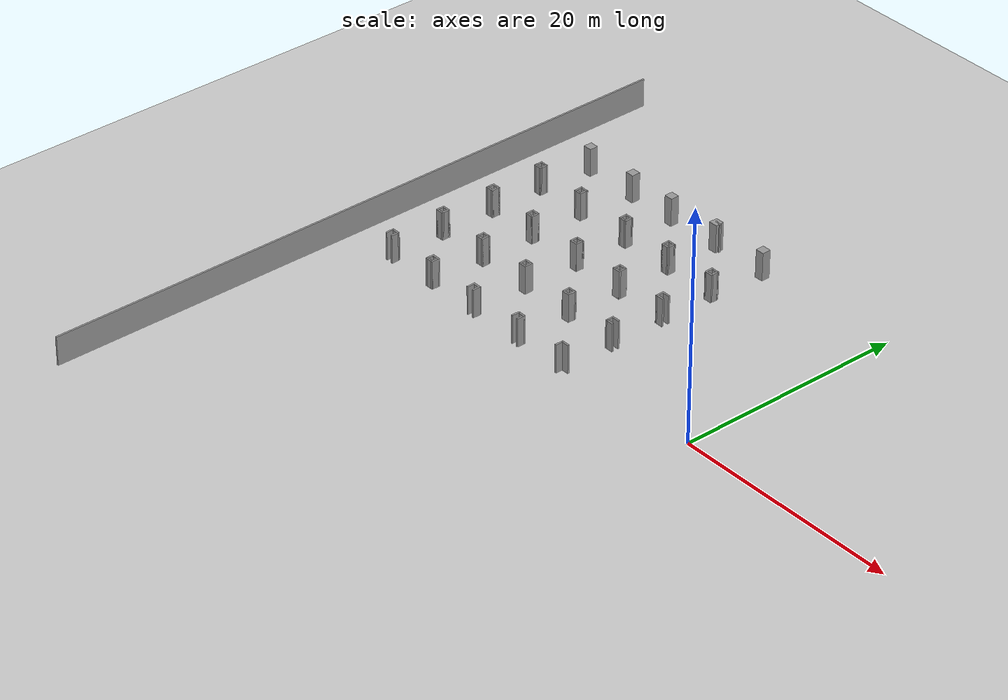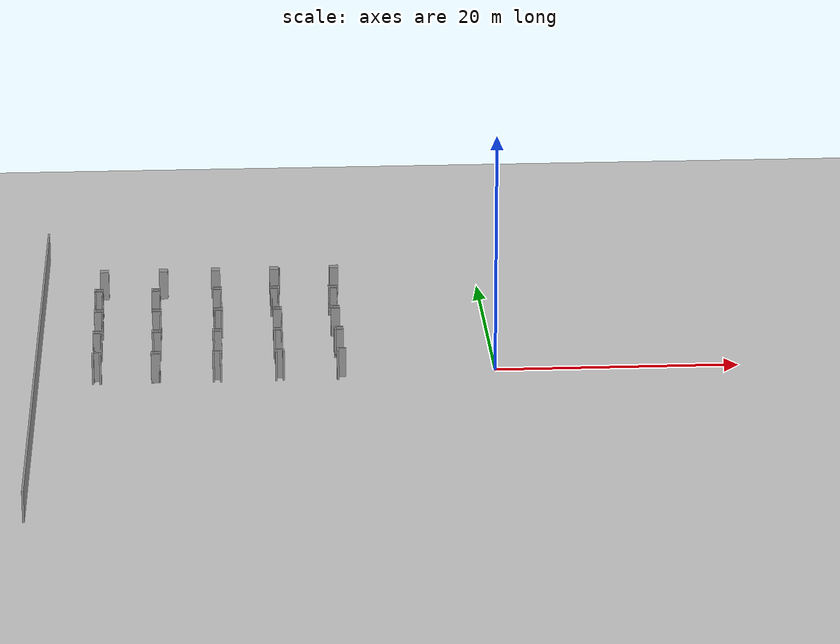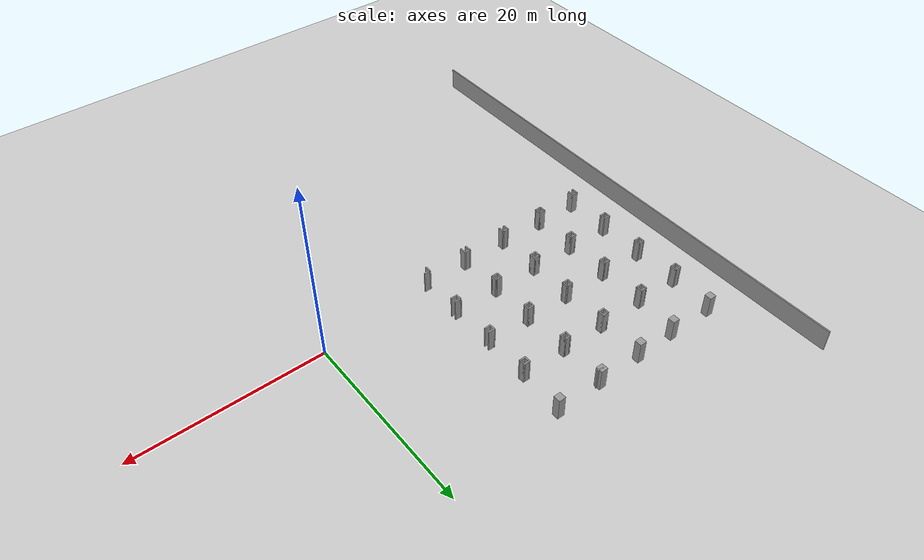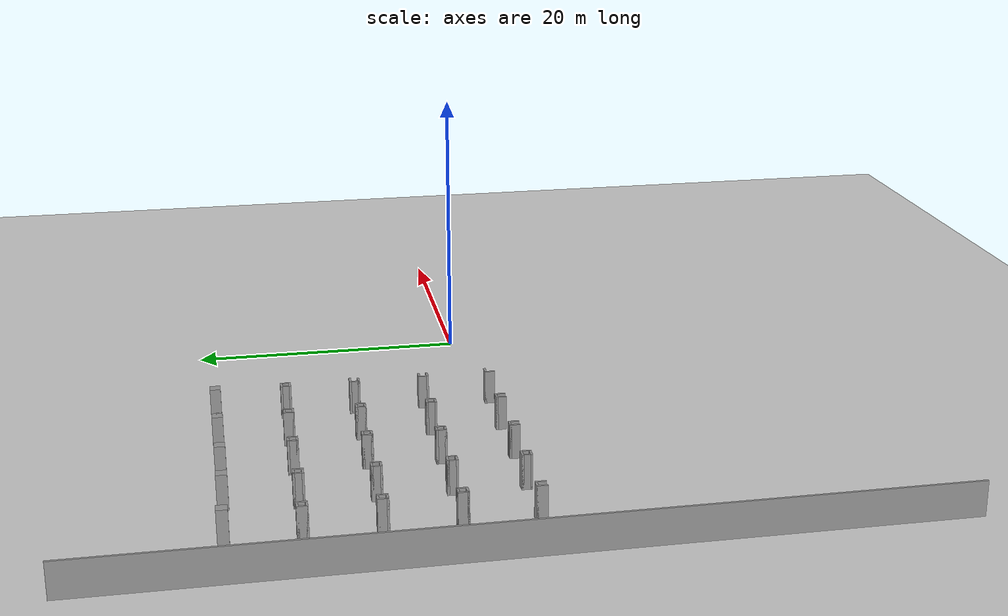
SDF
<sdf version="1.6">
 <world name="default">
  <model name="ground_plane">
   <static>1</static>
   <link name="link">
    <collision name="collision">
     <geometry><plane><normal>0 0 1</normal><size>100 100</size></plane></geometry>
     <surface>
      <contact><collide_bitmask>65535</collide_bitmask></contact>
      <friction><ode><mu>100</mu><mu2>50</mu2></ode></friction>
     </surface>
    </collision>
    <visual name="visual">
     <cast_shadows>0</cast_shadows>
     <geometry><plane><normal>0 0 1</normal><size>100 100</size></plane></geometry>
     <material>
      <script><uri>file://media/materials/scripts/gazebo.material</uri><name>Gazebo/Grey</name></script>
     </material>
    </visual>
   </link>
  </model>
  <model name="parking_area_big">
   <pose>0.030669 -0.012869 0 0 -0 0</pose>
   <link name="Wall_20">
    <collision name="Wall_20_Collision">
     <geometry><box><size>57.75 0.15 2.5</size></box></geometry>
     <pose>0 0 1.25 0 -0 0</pose>
    </collision>
    <visual name="Wall_20_Visual">
     <pose>0 0 1.25 0 -0 0</pose>
     <geometry><box><size>57.75 0.15 2.5</size></box></geometry>
     <material>
      <script><uri>file://media/materials/scripts/gazebo.material</uri><name>Gazebo/Grey</name></script>
      <ambient>1 1 1 1</ambient>
     </material>
     <meta><layer>0</layer></meta>
    </visual>
    <pose>-37.2686 0.011069 0 0 -0 1.5708</pose>
   </link>
   <link name="Wall_310">
    <collision name="Wall_310_Collision">
     <geometry><box><size>0.75 0.15 2.5</size></box></geometry>
     <pose>0 0 1.25 0 -0 0</pose>
    </collision>
    <visual name="Wall_310_Visual">
     <pose>0 0 1.25 0 -0 0</pose>
     <geometry><box><size>0.75 0.15 2.5</size></box></geometry>
     <material>
      <script><uri>file://media/materials/scripts/gazebo.material</uri><name>Gazebo/Grey</name></script>
      <ambient>1 1 1 1</ambient>
     </material>
     <meta><layer>0</layer></meta>
    </visual>
    <pose>-27.7407 14.2231 0 0 -0 0</pose>
   </link>
   <link name="Wall_311">
    <collision name="Wall_311_Collision">
     <geometry><box><size>0.75 0.15 2.5</size></box></geometry>
     <pose>0 0 1.25 0 -0 0</pose>
    </collision>
    <visual name="Wall_311_Visual">
     <pose>0 0 1.25 0 -0 0</pose>
     <geometry><box><size>0.75 0.15 2.5</size></box></geometry>
     <material>
      <script><uri>file://media/materials/scripts/gazebo.material</uri><name>Gazebo/Grey</name></script>
      <ambient>1 1 1 1</ambient>
     </material>
     <meta><layer>0</layer></meta>
    </visual>
    <pose>-27.4407 13.9231 0 0 -0 -1.5708</pose>
   </link>
   <link name="Wall_312">
    <collision name="Wall_312_Collision">
     <geometry><box><size>0.75 0.15 2.5</size></box></geometry>
     <pose>0 0 1.25 0 -0 0</pose>
    </collision>
    <visual name="Wall_312_Visual">
     <pose>0 0 1.25 0 -0 0</pose>
     <geometry><box><size>0.75 0.15 2.5</size></box></geometry>
     <material>
      <script><uri>file://media/materials/scripts/gazebo.material</uri><name>Gazebo/Grey</name></script>
      <ambient>1 1 1 1</ambient>
     </material>
     <meta><layer>0</layer></meta>
    </visual>
    <pose>-27.7407 13.6231 0 0 -0 3.14159</pose>
   </link>
   <link name="Wall_313">
    <collision name="Wall_313_Collision">
     <geometry><box><size>0.75 0.15 2.5</size></box></geometry>
     <pose>0 0 1.25 0 -0 0</pose>
    </collision>
    <visual name="Wall_313_Visual">
     <pose>0 0 1.25 0 -0 0</pose>
     <geometry><box><size>0.75 0.15 2.5</size></box></geometry>
     <material>
      <script><uri>file://media/materials/scripts/gazebo.material</uri><name>Gazebo/Grey</name></script>
      <ambient>1 1 1 1</ambient>
     </material>
     <meta><layer>0</layer></meta>
    </visual>
    <pose>-28.0407 13.9231 0 0 -0 1.5708</pose>
   </link>
   <link name="Wall_315">
    <collision name="Wall_315_Collision">
     <geometry><box><size>0.75 0.15 2.5</size></box></geometry>
     <pose>0 0 1.25 0 -0 0</pose>
    </collision>
    <visual name="Wall_315_Visual">
     <pose>0 0 1.25 0 -0 0</pose>
     <geometry><box><size>0.75 0.15 2.5</size></box></geometry>
     <material>
      <script><uri>file://media/materials/scripts/gazebo.material</uri><name>Gazebo/Grey</name></script>
      <ambient>1 1 1 1</ambient>
     </material>
     <meta><layer>0</layer></meta>
    </visual>
    <pose>-22.5565 14.276 0 0 -0 0</pose>
   </link>
   <link name="Wall_316">
    <collision name="Wall_316_Collision">
     <geometry><box><size>0.75 0.15 2.5</size></box></geometry>
     <pose>0 0 1.25 0 -0 0</pose>
    </collision>
    <visual name="Wall_316_Visual">
     <pose>0 0 1.25 0 -0 0</pose>
     <geometry><box><size>0.75 0.15 2.5</size></box></geometry>
     <material>
      <script><uri>file://media/materials/scripts/gazebo.material</uri><name>Gazebo/Grey</name></script>
      <ambient>1 1 1 1</ambient>
     </material>
     <meta><layer>0</layer></meta>
    </visual>
    <pose>-22.2565 13.976 0 0 -0 -1.5708</pose>
   </link>
   <link name="Wall_317">
    <collision name="Wall_317_Collision">
     <geometry><box><size>0.75 0.15 2.5</size></box></geometry>
     <pose>0 0 1.25 0 -0 0</pose>
    </collision>
    <visual name="Wall_317_Visual">
     <pose>0 0 1.25 0 -0 0</pose>
     <geometry><box><size>0.75 0.15 2.5</size></box></geometry>
     <material>
      <script><uri>file://media/materials/scripts/gazebo.material</uri><name>Gazebo/Grey</name></script>
      <ambient>1 1 1 1</ambient>
     </material>
     <meta><layer>0</layer></meta>
    </visual>
    <pose>-22.5565 13.676 0 0 -0 3.14159</pose>
   </link>
   <link name="Wall_319">
    <collision name="Wall_319_Collision">
     <geometry><box><size>0.75 0.15 2.5</size></box></geometry>
     <pose>0 0 1.25 0 -0 0</pose>
    </collision>
    <visual name="Wall_319_Visual">
     <pose>0 0 1.25 0 -0 0</pose>
     <geometry><box><size>0.75 0.15 2.5</size></box></geometry>
     <material>
      <script><uri>file://media/materials/scripts/gazebo.material</uri><name>Gazebo/Grey</name></script>
      <ambient>1 1 1 1</ambient>
     </material>
     <meta><layer>0</layer></meta>
    </visual>
    <pose>-22.8565 13.976 0 0 -0 -1.5708</pose>
   </link>
   <link name="Wall_323">
    <collision name="Wall_323_Collision">
     <geometry><box><size>0.75 0.15 2.5</size></box></geometry>
     <pose>0 0 1.25 0 -0 0</pose>
    </collision>
    <visual name="Wall_323_Visual">
     <pose>0 0 1.25 0 -0 0</pose>
     <geometry><box><size>0.75 0.15 2.5</size></box></geometry>
     <material>
      <script><uri>file://media/materials/scripts/gazebo.material</uri><name>Gazebo/Grey</name></script>
      <ambient>1 1 1 1</ambient>
     </material>
     <meta><layer>0</layer></meta>
    </visual>
    <pose>-17.6897 14.276 0 0 -0 0</pose>
   </link>
   <link name="Wall_324">
    <collision name="Wall_324_Collision">
     <geometry><box><size>0.75 0.15 2.5</size></box></geometry>
     <pose>0 0 1.25 0 -0 0</pose>
    </collision>
    <visual name="Wall_324_Visual">
     <pose>0 0 1.25 0 -0 0</pose>
     <geometry><box><size>0.75 0.15 2.5</size></box></geometry>
     <material>
      <script><uri>file://media/materials/scripts/gazebo.material</uri><name>Gazebo/Grey</name></script>
      <ambient>1 1 1 1</ambient>
     </material>
     <meta><layer>0</layer></meta>
    </visual>
    <pose>-17.3897 13.976 0 0 -0 -1.5708</pose>
   </link>
   <link name="Wall_325">
    <collision name="Wall_325_Collision">
     <geometry><box><size>0.75 0.15 2.5</size></box></geometry>
     <pose>0 0 1.25 0 -0 0</pose>
    </collision>
    <visual name="Wall_325_Visual">
     <pose>0 0 1.25 0 -0 0</pose>
     <geometry><box><size>0.75 0.15 2.5</size></box></geometry>
     <material>
      <script><uri>file://media/materials/scripts/gazebo.material</uri><name>Gazebo/Grey</name></script>
      <ambient>1 1 1 1</ambient>
     </material>
     <meta><layer>0</layer></meta>
    </visual>
    <pose>-17.6897 13.676 0 0 -0 3.14159</pose>
   </link>
   <link name="Wall_326">
    <collision name="Wall_326_Collision">
     <geometry><box><size>0.75 0.15 2.5</size></box></geometry>
     <pose>0 0 1.25 0 -0 0</pose>
    </collision>
    <visual name="Wall_326_Visual">
     <pose>0 0 1.25 0 -0 0</pose>
     <geometry><box><size>0.75 0.15 2.5</size></box></geometry>
     <material>
      <script><uri>file://media/materials/scripts/gazebo.material</uri><name>Gazebo/Grey</name></script>
      <ambient>1 1 1 1</ambient>
     </material>
     <meta><layer>0</layer></meta>
    </visual>
    <pose>-17.9897 13.976 0 0 -0 1.5708</pose>
   </link>
   <link name="Wall_328">
    <collision name="Wall_328_Collision">
     <geometry><box><size>0.75 0.15 2.5</size></box></geometry>
     <pose>0 0 1.25 0 -0 0</pose>
    </collision>
    <visual name="Wall_328_Visual">
     <pose>0 0 1.25 0 -0 0</pose>
     <geometry><box><size>0.75 0.15 2.5</size></box></geometry>
     <material>
      <script><uri>file://media/materials/scripts/gazebo.material</uri><name>Gazebo/Grey</name></script>
      <ambient>1 1 1 1</ambient>
     </material>
     <meta><layer>0</layer></meta>
    </visual>
    <pose>-12.77 14.2231 0 0 -0 0</pose>
   </link>
   <link name="Wall_329">
    <collision name="Wall_329_Collision">
     <geometry><box><size>0.75 0.15 2.5</size></box></geometry>
     <pose>0 0 1.25 0 -0 0</pose>
    </collision>
    <visual name="Wall_329_Visual">
     <pose>0 0 1.25 0 -0 0</pose>
     <geometry><box><size>0.75 0.15 2.5</size></box></geometry>
     <material>
      <script><uri>file://media/materials/scripts/gazebo.material</uri><name>Gazebo/Grey</name></script>
      <ambient>1 1 1 1</ambient>
     </material>
     <meta><layer>0</layer></meta>
    </visual>
    <pose>-12.47 13.9231 0 0 -0 -1.5708</pose>
   </link>
   <link name="Wall_330">
    <collision name="Wall_330_Collision">
     <geometry><box><size>0.75 0.15 2.5</size></box></geometry>
     <pose>0 0 1.25 0 -0 0</pose>
    </collision>
    <visual name="Wall_330_Visual">
     <pose>0 0 1.25 0 -0 0</pose>
     <geometry><box><size>0.75 0.15 2.5</size></box></geometry>
     <material>
      <script><uri>file://media/materials/scripts/gazebo.material</uri><name>Gazebo/Grey</name></script>
      <ambient>1 1 1 1</ambient>
     </material>
     <meta><layer>0</layer></meta>
    </visual>
    <pose>-12.77 13.6231 0 0 -0 3.14159</pose>
   </link>
   <link name="Wall_331">
    <collision name="Wall_331_Collision">
     <geometry><box><size>0.75 0.15 2.5</size></box></geometry>
     <pose>0 0 1.25 0 -0 0</pose>
    </collision>
    <visual name="Wall_331_Visual">
     <pose>0 0 1.25 0 -0 0</pose>
     <geometry><box><size>0.75 0.15 2.5</size></box></geometry>
     <material>
      <script><uri>file://media/materials/scripts/gazebo.material</uri><name>Gazebo/Grey</name></script>
      <ambient>1 1 1 1</ambient>
     </material>
     <meta><layer>0</layer></meta>
    </visual>
    <pose>-13.07 13.9231 0 0 -0 1.5708</pose>
   </link>
   <link name="Wall_343">
    <collision name="Wall_343_Collision">
     <geometry><box><size>0.75 0.15 2.5</size></box></geometry>
     <pose>0 0 1.25 0 -0 0</pose>
    </collision>
    <visual name="Wall_343_Visual">
     <pose>0 0 1.25 0 -0 0</pose>
     <geometry><box><size>0.75 0.15 2.5</size></box></geometry>
     <material>
      <script><uri>file://media/materials/scripts/gazebo.material</uri><name>Gazebo/Grey</name></script>
      <ambient>1 1 1 1</ambient>
     </material>
     <meta><layer>0</layer></meta>
    </visual>
    <pose>-12.7435 9.2505 0 0 -0 0</pose>
   </link>
   <link name="Wall_345">
    <collision name="Wall_345_Collision">
     <geometry><box><size>0.75 0.15 2.5</size></box></geometry>
     <pose>0 0 1.25 0 -0 0</pose>
    </collision>
    <visual name="Wall_345_Visual">
     <pose>0 0 1.25 0 -0 0</pose>
     <geometry><box><size>0.75 0.15 2.5</size></box></geometry>
     <material>
      <script><uri>file://media/materials/scripts/gazebo.material</uri><name>Gazebo/Grey</name></script>
      <ambient>1 1 1 1</ambient>
     </material>
     <meta><layer>0</layer></meta>
    </visual>
    <pose>-12.7435 8.6505 0 0 -0 3.14159</pose>
   </link>
   <link name="Wall_346">
    <collision name="Wall_346_Collision">
     <geometry><box><size>0.75 0.15 2.5</size></box></geometry>
     <pose>0 0 1.25 0 -0 0</pose>
    </collision>
    <visual name="Wall_346_Visual">
     <pose>0 0 1.25 0 -0 0</pose>
     <geometry><box><size>0.75 0.15 2.5</size></box></geometry>
     <material>
      <script><uri>file://media/materials/scripts/gazebo.material</uri><name>Gazebo/Grey</name></script>
      <ambient>1 1 1 1</ambient>
     </material>
     <meta><layer>0</layer></meta>
    </visual>
    <pose>-13.0435 8.9505 0 0 -0 1.5708</pose>
   </link>
   <link name="Wall_348">
    <collision name="Wall_348_Collision">
     <geometry><box><size>0.75 0.15 2.5</size></box></geometry>
     <pose>0 0 1.25 0 -0 0</pose>
    </collision>
    <visual name="Wall_348_Visual">
     <pose>0 0 1.25 0 -0 0</pose>
     <geometry><box><size>0.75 0.15 2.5</size></box></geometry>
     <material>
      <script><uri>file://media/materials/scripts/gazebo.material</uri><name>Gazebo/Grey</name></script>
      <ambient>1 1 1 1</ambient>
     </material>
     <meta><layer>0</layer></meta>
    </visual>
    <pose>-17.5839 9.2505 0 0 -0 0</pose>
   </link>
   <link name="Wall_349">
    <collision name="Wall_349_Collision">
     <geometry><box><size>0.75 0.15 2.5</size></box></geometry>
     <pose>0 0 1.25 0 -0 0</pose>
    </collision>
    <visual name="Wall_349_Visual">
     <pose>0 0 1.25 0 -0 0</pose>
     <geometry><box><size>0.75 0.15 2.5</size></box></geometry>
     <material>
      <script><uri>file://media/materials/scripts/gazebo.material</uri><name>Gazebo/Grey</name></script>
      <ambient>1 1 1 1</ambient>
     </material>
     <meta><layer>0</layer></meta>
    </visual>
    <pose>-17.2839 8.9505 0 0 -0 -1.5708</pose>
   </link>
   <link name="Wall_350">
    <collision name="Wall_350_Collision">
     <geometry><box><size>0.75 0.15 2.5</size></box></geometry>
     <pose>0 0 1.25 0 -0 0</pose>
    </collision>
    <visual name="Wall_350_Visual">
     <pose>0 0 1.25 0 -0 0</pose>
     <geometry><box><size>0.75 0.15 2.5</size></box></geometry>
     <material>
      <script><uri>file://media/materials/scripts/gazebo.material</uri><name>Gazebo/Grey</name></script>
      <ambient>1 1 1 1</ambient>
     </material>
     <meta><layer>0</layer></meta>
    </visual>
    <pose>-17.5839 8.6505 0 0 -0 3.14159</pose>
   </link>
   <link name="Wall_351">
    <collision name="Wall_351_Collision">
     <geometry><box><size>0.75 0.15 2.5</size></box></geometry>
     <pose>0 0 1.25 0 -0 0</pose>
    </collision>
    <visual name="Wall_351_Visual">
     <pose>0 0 1.25 0 -0 0</pose>
     <geometry><box><size>0.75 0.15 2.5</size></box></geometry>
     <material>
      <script><uri>file://media/materials/scripts/gazebo.material</uri><name>Gazebo/Grey</name></script>
      <ambient>1 1 1 1</ambient>
     </material>
     <meta><layer>0</layer></meta>
    </visual>
    <pose>-17.8839 8.9505 0 0 -0 1.5708</pose>
   </link>
   <link name="Wall_353">
    <collision name="Wall_353_Collision">
     <geometry><box><size>0.75 0.15 2.5</size></box></geometry>
     <pose>0 0 1.25 0 -0 0</pose>
    </collision>
    <visual name="Wall_353_Visual">
     <pose>0 0 1.25 0 -0 0</pose>
     <geometry><box><size>0.75 0.15 2.5</size></box></geometry>
     <material>
      <script><uri>file://media/materials/scripts/gazebo.material</uri><name>Gazebo/Grey</name></script>
      <ambient>1 1 1 1</ambient>
     </material>
     <meta><layer>0</layer></meta>
    </visual>
    <pose>-22.53 9.27695 0 0 -0 0</pose>
   </link>
   <link name="Wall_354">
    <collision name="Wall_354_Collision">
     <geometry><box><size>0.75 0.15 2.5</size></box></geometry>
     <pose>0 0 1.25 0 -0 0</pose>
    </collision>
    <visual name="Wall_354_Visual">
     <pose>0 0 1.25 0 -0 0</pose>
     <geometry><box><size>0.75 0.15 2.5</size></box></geometry>
     <material>
      <script><uri>file://media/materials/scripts/gazebo.material</uri><name>Gazebo/Grey</name></script>
      <ambient>1 1 1 1</ambient>
     </material>
     <meta><layer>0</layer></meta>
    </visual>
    <pose>-22.23 8.97695 0 0 -0 -1.5708</pose>
   </link>
   <link name="Wall_355">
    <collision name="Wall_355_Collision">
     <geometry><box><size>0.75 0.15 2.5</size></box></geometry>
     <pose>0 0 1.25 0 -0 0</pose>
    </collision>
    <visual name="Wall_355_Visual">
     <pose>0 0 1.25 0 -0 0</pose>
     <geometry><box><size>0.75 0.15 2.5</size></box></geometry>
     <material>
      <script><uri>file://media/materials/scripts/gazebo.material</uri><name>Gazebo/Grey</name></script>
      <ambient>1 1 1 1</ambient>
     </material>
     <meta><layer>0</layer></meta>
    </visual>
    <pose>-22.53 8.67695 0 0 -0 3.14159</pose>
   </link>
   <link name="Wall_356">
    <collision name="Wall_356_Collision">
     <geometry><box><size>0.75 0.15 2.5</size></box></geometry>
     <pose>0 0 1.25 0 -0 0</pose>
    </collision>
    <visual name="Wall_356_Visual">
     <pose>0 0 1.25 0 -0 0</pose>
     <geometry><box><size>0.75 0.15 2.5</size></box></geometry>
     <material>
      <script><uri>file://media/materials/scripts/gazebo.material</uri><name>Gazebo/Grey</name></script>
      <ambient>1 1 1 1</ambient>
     </material>
     <meta><layer>0</layer></meta>
    </visual>
    <pose>-22.83 8.97695 0 0 -0 1.5708</pose>
   </link>
   <link name="Wall_358">
    <collision name="Wall_358_Collision">
     <geometry><box><size>0.75 0.15 2.5</size></box></geometry>
     <pose>0 0 1.25 0 -0 0</pose>
    </collision>
    <visual name="Wall_358_Visual">
     <pose>0 0 1.25 0 -0 0</pose>
     <geometry><box><size>0.75 0.15 2.5</size></box></geometry>
     <material>
      <script><uri>file://media/materials/scripts/gazebo.material</uri><name>Gazebo/Grey</name></script>
      <ambient>1 1 1 1</ambient>
     </material>
     <meta><layer>0</layer></meta>
    </visual>
    <pose>-27.6349 9.1976 0 0 -0 0</pose>
   </link>
   <link name="Wall_359">
    <collision name="Wall_359_Collision">
     <geometry><box><size>0.75 0.15 2.5</size></box></geometry>
     <pose>0 0 1.25 0 -0 0</pose>
    </collision>
    <visual name="Wall_359_Visual">
     <pose>0 0 1.25 0 -0 0</pose>
     <geometry><box><size>0.75 0.15 2.5</size></box></geometry>
     <material>
      <script><uri>file://media/materials/scripts/gazebo.material</uri><name>Gazebo/Grey</name></script>
      <ambient>1 1 1 1</ambient>
     </material>
     <meta><layer>0</layer></meta>
    </visual>
    <pose>-27.3349 8.8976 0 0 -0 -1.5708</pose>
   </link>
   <link name="Wall_360">
    <collision name="Wall_360_Collision">
     <geometry><box><size>0.75 0.15 2.5</size></box></geometry>
     <pose>0 0 1.25 0 -0 0</pose>
    </collision>
    <visual name="Wall_360_Visual">
     <pose>0 0 1.25 0 -0 0</pose>
     <geometry><box><size>0.75 0.15 2.5</size></box></geometry>
     <material>
      <script><uri>file://media/materials/scripts/gazebo.material</uri><name>Gazebo/Grey</name></script>
      <ambient>1 1 1 1</ambient>
     </material>
     <meta><layer>0</layer></meta>
    </visual>
    <pose>-27.6349 8.5976 0 0 -0 3.14159</pose>
   </link>
   <link name="Wall_361">
    <collision name="Wall_361_Collision">
     <geometry><box><size>0.75 0.15 2.5</size></box></geometry>
     <pose>0 0 1.25 0 -0 0</pose>
    </collision>
    <visual name="Wall_361_Visual">
     <pose>0 0 1.25 0 -0 0</pose>
     <geometry><box><size>0.75 0.15 2.5</size></box></geometry>
     <material>
      <script><uri>file://media/materials/scripts/gazebo.material</uri><name>Gazebo/Grey</name></script>
      <ambient>1 1 1 1</ambient>
     </material>
     <meta><layer>0</layer></meta>
    </visual>
    <pose>-27.9349 8.8976 0 0 -0 1.5708</pose>
   </link>
   <link name="Wall_363">
    <collision name="Wall_363_Collision">
     <geometry><box><size>0.75 0.15 2.5</size></box></geometry>
     <pose>0 0 1.25 0 -0 0</pose>
    </collision>
    <visual name="Wall_363_Visual">
     <pose>0 0 1.25 0 -0 0</pose>
     <geometry><box><size>0.75 0.15 2.5</size></box></geometry>
     <material>
      <script><uri>file://media/materials/scripts/gazebo.material</uri><name>Gazebo/Grey</name></script>
      <ambient>1 1 1 1</ambient>
     </material>
     <meta><layer>0</layer></meta>
    </visual>
    <pose>-27.6349 4.25145 0 0 -0 0</pose>
   </link>
   <link name="Wall_364">
    <collision name="Wall_364_Collision">
     <geometry><box><size>0.75 0.15 2.5</size></box></geometry>
     <pose>0 0 1.25 0 -0 0</pose>
    </collision>
    <visual name="Wall_364_Visual">
     <pose>0 0 1.25 0 -0 0</pose>
     <geometry><box><size>0.75 0.15 2.5</size></box></geometry>
     <material>
      <script><uri>file://media/materials/scripts/gazebo.material</uri><name>Gazebo/Grey</name></script>
      <ambient>1 1 1 1</ambient>
     </material>
     <meta><layer>0</layer></meta>
    </visual>
    <pose>-27.3349 3.95145 0 0 -0 -1.5708</pose>
   </link>
   <link name="Wall_365">
    <collision name="Wall_365_Collision">
     <geometry><box><size>0.75 0.15 2.5</size></box></geometry>
     <pose>0 0 1.25 0 -0 0</pose>
    </collision>
    <visual name="Wall_365_Visual">
     <pose>0 0 1.25 0 -0 0</pose>
     <geometry><box><size>0.75 0.15 2.5</size></box></geometry>
     <material>
      <script><uri>file://media/materials/scripts/gazebo.material</uri><name>Gazebo/Grey</name></script>
      <ambient>1 1 1 1</ambient>
     </material>
     <meta><layer>0</layer></meta>
    </visual>
    <pose>-27.6349 3.65145 0 0 -0 3.14159</pose>
   </link>
   <link name="Wall_366">
    <collision name="Wall_366_Collision">
     <geometry><box><size>0.75 0.15 2.5</size></box></geometry>
     <pose>0 0 1.25 0 -0 0</pose>
    </collision>
    <visual name="Wall_366_Visual">
     <pose>0 0 1.25 0 -0 0</pose>
     <geometry><box><size>0.75 0.15 2.5</size></box></geometry>
     <material>
      <script><uri>file://media/materials/scripts/gazebo.material</uri><name>Gazebo/Grey</name></script>
      <ambient>1 1 1 1</ambient>
     </material>
     <meta><layer>0</layer></meta>
    </visual>
    <pose>-27.9349 3.95145 0 0 -0 1.5708</pose>
   </link>
   <link name="Wall_368">
    <collision name="Wall_368_Collision">
     <geometry><box><size>0.75 0.15 2.5</size></box></geometry>
     <pose>0 0 1.25 0 -0 0</pose>
    </collision>
    <visual name="Wall_368_Visual">
     <pose>0 0 1.25 0 -0 0</pose>
     <geometry><box><size>0.75 0.15 2.5</size></box></geometry>
     <material>
      <script><uri>file://media/materials/scripts/gazebo.material</uri><name>Gazebo/Grey</name></script>
      <ambient>1 1 1 1</ambient>
     </material>
     <meta><layer>0</layer></meta>
    </visual>
    <pose>-22.6623 4.2779 0 0 -0 0</pose>
   </link>
   <link name="Wall_369">
    <collision name="Wall_369_Collision">
     <geometry><box><size>0.75 0.15 2.5</size></box></geometry>
     <pose>0 0 1.25 0 -0 0</pose>
    </collision>
    <visual name="Wall_369_Visual">
     <pose>0 0 1.25 0 -0 0</pose>
     <geometry><box><size>0.75 0.15 2.5</size></box></geometry>
     <material>
      <script><uri>file://media/materials/scripts/gazebo.material</uri><name>Gazebo/Grey</name></script>
      <ambient>1 1 1 1</ambient>
     </material>
     <meta><layer>0</layer></meta>
    </visual>
    <pose>-22.3623 3.9779 0 0 -0 -1.5708</pose>
   </link>
   <link name="Wall_370">
    <collision name="Wall_370_Collision">
     <geometry><box><size>0.75 0.15 2.5</size></box></geometry>
     <pose>0 0 1.25 0 -0 0</pose>
    </collision>
    <visual name="Wall_370_Visual">
     <pose>0 0 1.25 0 -0 0</pose>
     <geometry><box><size>0.75 0.15 2.5</size></box></geometry>
     <material>
      <script><uri>file://media/materials/scripts/gazebo.material</uri><name>Gazebo/Grey</name></script>
      <ambient>1 1 1 1</ambient>
     </material>
     <meta><layer>0</layer></meta>
    </visual>
    <pose>-22.6623 3.6779 0 0 -0 3.14159</pose>
   </link>
   <link name="Wall_371">
    <collision name="Wall_371_Collision">
     <geometry><box><size>0.75 0.15 2.5</size></box></geometry>
     <pose>0 0 1.25 0 -0 0</pose>
    </collision>
    <visual name="Wall_371_Visual">
     <pose>0 0 1.25 0 -0 0</pose>
     <geometry><box><size>0.75 0.15 2.5</size></box></geometry>
     <material>
      <script><uri>file://media/materials/scripts/gazebo.material</uri><name>Gazebo/Grey</name></script>
      <ambient>1 1 1 1</ambient>
     </material>
     <meta><layer>0</layer></meta>
    </visual>
    <pose>-22.9623 3.9779 0 0 -0 1.5708</pose>
   </link>
   <link name="Wall_376">
    <collision name="Wall_376_Collision">
     <geometry><box><size>0.75 0.15 2.5</size></box></geometry>
     <pose>0 0 1.25 0 -0 0</pose>
    </collision>
    <visual name="Wall_376_Visual">
     <pose>0 0 1.25 0 -0 0</pose>
     <geometry><box><size>0.75 0.15 2.5</size></box></geometry>
     <material>
      <script><uri>file://media/materials/scripts/gazebo.material</uri><name>Gazebo/Grey</name></script>
      <ambient>1 1 1 1</ambient>
     </material>
     <meta><layer>0</layer></meta>
    </visual>
    <pose>-17.6632 4.2779 0 0 -0 0</pose>
   </link>
   <link name="Wall_377">
    <collision name="Wall_377_Collision">
     <geometry><box><size>0.75 0.15 2.5</size></box></geometry>
     <pose>0 0 1.25 0 -0 0</pose>
    </collision>
    <visual name="Wall_377_Visual">
     <pose>0 0 1.25 0 -0 0</pose>
     <geometry><box><size>0.75 0.15 2.5</size></box></geometry>
     <material>
      <script><uri>file://media/materials/scripts/gazebo.material</uri><name>Gazebo/Grey</name></script>
      <ambient>1 1 1 1</ambient>
     </material>
     <meta><layer>0</layer></meta>
    </visual>
    <pose>-17.3632 3.9779 0 0 -0 -1.5708</pose>
   </link>
   <link name="Wall_378">
    <collision name="Wall_378_Collision">
     <geometry><box><size>0.75 0.15 2.5</size></box></geometry>
     <pose>0 0 1.25 0 -0 0</pose>
    </collision>
    <visual name="Wall_378_Visual">
     <pose>0 0 1.25 0 -0 0</pose>
     <geometry><box><size>0.75 0.15 2.5</size></box></geometry>
     <material>
      <script><uri>file://media/materials/scripts/gazebo.material</uri><name>Gazebo/Grey</name></script>
      <ambient>1 1 1 1</ambient>
     </material>
     <meta><layer>0</layer></meta>
    </visual>
    <pose>-17.6632 3.6779 0 0 -0 3.14159</pose>
   </link>
   <link name="Wall_379">
    <collision name="Wall_379_Collision">
     <geometry><box><size>0.75 0.15 2.5</size></box></geometry>
     <pose>0 0 1.25 0 -0 0</pose>
    </collision>
    <visual name="Wall_379_Visual">
     <pose>0 0 1.25 0 -0 0</pose>
     <geometry><box><size>0.75 0.15 2.5</size></box></geometry>
     <material>
      <script><uri>file://media/materials/scripts/gazebo.material</uri><name>Gazebo/Grey</name></script>
      <ambient>1 1 1 1</ambient>
     </material>
     <meta><layer>0</layer></meta>
    </visual>
    <pose>-17.9632 3.9779 0 0 -0 1.5708</pose>
   </link>
   <link name="Wall_381">
    <collision name="Wall_381_Collision">
     <geometry><box><size>0.75 0.15 2.5</size></box></geometry>
     <pose>0 0 1.25 0 -0 0</pose>
    </collision>
    <visual name="Wall_381_Visual">
     <pose>0 0 1.25 0 -0 0</pose>
     <geometry><box><size>0.75 0.15 2.5</size></box></geometry>
     <material>
      <script><uri>file://media/materials/scripts/gazebo.material</uri><name>Gazebo/Grey</name></script>
      <ambient>1 1 1 1</ambient>
     </material>
     <meta><layer>0</layer></meta>
    </visual>
    <pose>-12.6642 4.19855 0 0 -0 0</pose>
   </link>
   <link name="Wall_383">
    <collision name="Wall_383_Collision">
     <geometry><box><size>0.75 0.15 2.5</size></box></geometry>
     <pose>0 0 1.25 0 -0 0</pose>
    </collision>
    <visual name="Wall_383_Visual">
     <pose>0 0 1.25 0 -0 0</pose>
     <geometry><box><size>0.75 0.15 2.5</size></box></geometry>
     <material>
      <script><uri>file://media/materials/scripts/gazebo.material</uri><name>Gazebo/Grey</name></script>
      <ambient>1 1 1 1</ambient>
     </material>
     <meta><layer>0</layer></meta>
    </visual>
    <pose>-12.6642 3.59855 0 0 -0 3.14159</pose>
   </link>
   <link name="Wall_384">
    <collision name="Wall_384_Collision">
     <geometry><box><size>0.75 0.15 2.5</size></box></geometry>
     <pose>0 0 1.25 0 -0 0</pose>
    </collision>
    <visual name="Wall_384_Visual">
     <pose>0 0 1.25 0 -0 0</pose>
     <geometry><box><size>0.75 0.15 2.5</size></box></geometry>
     <material>
      <script><uri>file://media/materials/scripts/gazebo.material</uri><name>Gazebo/Grey</name></script>
      <ambient>1 1 1 1</ambient>
     </material>
     <meta><layer>0</layer></meta>
    </visual>
    <pose>-12.9642 3.89855 0 0 -0 1.5708</pose>
   </link>
   <link name="Wall_391">
    <collision name="Wall_391_Collision">
     <geometry><box><size>0.75 0.15 2.5</size></box></geometry>
     <pose>0 0 1.25 0 -0 0</pose>
    </collision>
    <visual name="Wall_391_Visual">
     <pose>0 0 1.25 0 -0 0</pose>
     <geometry><box><size>0.75 0.15 2.5</size></box></geometry>
     <material>
      <script><uri>file://media/materials/scripts/gazebo.material</uri><name>Gazebo/Grey</name></script>
      <ambient>1 1 1 1</ambient>
     </material>
     <meta><layer>0</layer></meta>
    </visual>
    <pose>-27.6878 -0.668253 0 0 -0 0</pose>
   </link>
   <link name="Wall_392">
    <collision name="Wall_392_Collision">
     <geometry><box><size>0.75 0.15 2.5</size></box></geometry>
     <pose>0 0 1.25 0 -0 0</pose>
    </collision>
    <visual name="Wall_392_Visual">
     <pose>0 0 1.25 0 -0 0</pose>
     <geometry><box><size>0.75 0.15 2.5</size></box></geometry>
     <material>
      <script><uri>file://media/materials/scripts/gazebo.material</uri><name>Gazebo/Grey</name></script>
      <ambient>1 1 1 1</ambient>
     </material>
     <meta><layer>0</layer></meta>
    </visual>
    <pose>-27.3878 -0.968253 0 0 -0 -1.5708</pose>
   </link>
   <link name="Wall_393">
    <collision name="Wall_393_Collision">
     <geometry><box><size>0.75 0.15 2.5</size></box></geometry>
     <pose>0 0 1.25 0 -0 0</pose>
    </collision>
    <visual name="Wall_393_Visual">
     <pose>0 0 1.25 0 -0 0</pose>
     <geometry><box><size>0.75 0.15 2.5</size></box></geometry>
     <material>
      <script><uri>file://media/materials/scripts/gazebo.material</uri><name>Gazebo/Grey</name></script>
      <ambient>1 1 1 1</ambient>
     </material>
     <meta><layer>0</layer></meta>
    </visual>
    <pose>-27.6878 -1.26825 0 0 -0 3.14159</pose>
   </link>
   <link name="Wall_394">
    <collision name="Wall_394_Collision">
     <geometry><box><size>0.75 0.15 2.5</size></box></geometry>
     <pose>0 0 1.25 0 -0 0</pose>
    </collision>
    <visual name="Wall_394_Visual">
     <pose>0 0 1.25 0 -0 0</pose>
     <geometry><box><size>0.75 0.15 2.5</size></box></geometry>
     <material>
      <script><uri>file://media/materials/scripts/gazebo.material</uri><name>Gazebo/Grey</name></script>
      <ambient>1 1 1 1</ambient>
     </material>
     <meta><layer>0</layer></meta>
    </visual>
    <pose>-27.9878 -0.968253 0 0 -0 1.5708</pose>
   </link>
   <link name="Wall_396">
    <collision name="Wall_396_Collision">
     <geometry><box><size>0.75 0.15 2.5</size></box></geometry>
     <pose>0 0 1.25 0 -0 0</pose>
    </collision>
    <visual name="Wall_396_Visual">
     <pose>0 0 1.25 0 -0 0</pose>
     <geometry><box><size>0.75 0.15 2.5</size></box></geometry>
     <material>
      <script><uri>file://media/materials/scripts/gazebo.material</uri><name>Gazebo/Grey</name></script>
      <ambient>1 1 1 1</ambient>
     </material>
     <meta><layer>0</layer></meta>
    </visual>
    <pose>-22.7152 -0.774053 0 0 -0 0</pose>
   </link>
   <link name="Wall_397">
    <collision name="Wall_397_Collision">
     <geometry><box><size>0.75 0.15 2.5</size></box></geometry>
     <pose>0 0 1.25 0 -0 0</pose>
    </collision>
    <visual name="Wall_397_Visual">
     <pose>0 0 1.25 0 -0 0</pose>
     <geometry><box><size>0.75 0.15 2.5</size></box></geometry>
     <material>
      <script><uri>file://media/materials/scripts/gazebo.material</uri><name>Gazebo/Grey</name></script>
      <ambient>1 1 1 1</ambient>
     </material>
     <meta><layer>0</layer></meta>
    </visual>
    <pose>-22.4152 -1.07405 0 0 -0 -1.5708</pose>
   </link>
   <link name="Wall_399">
    <collision name="Wall_399_Collision">
     <geometry><box><size>0.75 0.15 2.5</size></box></geometry>
     <pose>0 0 1.25 0 -0 0</pose>
    </collision>
    <visual name="Wall_399_Visual">
     <pose>0 0 1.25 0 -0 0</pose>
     <geometry><box><size>0.75 0.15 2.5</size></box></geometry>
     <material>
      <script><uri>file://media/materials/scripts/gazebo.material</uri><name>Gazebo/Grey</name></script>
      <ambient>1 1 1 1</ambient>
     </material>
     <meta><layer>0</layer></meta>
    </visual>
    <pose>-23.0152 -1.07405 0 0 -0 1.5708</pose>
   </link>
   <link name="Wall_401">
    <collision name="Wall_401_Collision">
     <geometry><box><size>0.75 0.15 2.5</size></box></geometry>
     <pose>0 0 1.25 0 -0 0</pose>
    </collision>
    <visual name="Wall_401_Visual">
     <pose>0 0 1.25 0 -0 0</pose>
     <geometry><box><size>0.75 0.15 2.5</size></box></geometry>
     <material>
      <script><uri>file://media/materials/scripts/gazebo.material</uri><name>Gazebo/Grey</name></script>
      <ambient>1 1 1 1</ambient>
     </material>
     <meta><layer>0</layer></meta>
    </visual>
    <pose>-17.6368 -0.721153 0 0 -0 0</pose>
   </link>
   <link name="Wall_402">
    <collision name="Wall_402_Collision">
     <geometry><box><size>0.75 0.15 2.5</size></box></geometry>
     <pose>0 0 1.25 0 -0 0</pose>
    </collision>
    <visual name="Wall_402_Visual">
     <pose>0 0 1.25 0 -0 0</pose>
     <geometry><box><size>0.75 0.15 2.5</size></box></geometry>
     <material>
      <script><uri>file://media/materials/scripts/gazebo.material</uri><name>Gazebo/Grey</name></script>
      <ambient>1 1 1 1</ambient>
     </material>
     <meta><layer>0</layer></meta>
    </visual>
    <pose>-17.3368 -1.02115 0 0 -0 -1.5708</pose>
   </link>
   <link name="Wall_404">
    <collision name="Wall_404_Collision">
     <geometry><box><size>0.75 0.15 2.5</size></box></geometry>
     <pose>0 0 1.25 0 -0 0</pose>
    </collision>
    <visual name="Wall_404_Visual">
     <pose>0 0 1.25 0 -0 0</pose>
     <geometry><box><size>0.75 0.15 2.5</size></box></geometry>
     <material>
      <script><uri>file://media/materials/scripts/gazebo.material</uri><name>Gazebo/Grey</name></script>
      <ambient>1 1 1 1</ambient>
     </material>
     <meta><layer>0</layer></meta>
    </visual>
    <pose>-17.9368 -1.02115 0 0 -0 1.5708</pose>
   </link>
   <link name="Wall_406">
    <collision name="Wall_406_Collision">
     <geometry><box><size>0.75 0.15 2.5</size></box></geometry>
     <pose>0 0 1.25 0 -0 0</pose>
    </collision>
    <visual name="Wall_406_Visual">
     <pose>0 0 1.25 0 -0 0</pose>
     <geometry><box><size>0.75 0.15 2.5</size></box></geometry>
     <material>
      <script><uri>file://media/materials/scripts/gazebo.material</uri><name>Gazebo/Grey</name></script>
      <ambient>1 1 1 1</ambient>
     </material>
     <meta><layer>0</layer></meta>
    </visual>
    <pose>-12.6377 -0.747603 0 0 -0 0</pose>
   </link>
   <link name="Wall_409">
    <collision name="Wall_409_Collision">
     <geometry><box><size>0.75 0.15 2.5</size></box></geometry>
     <pose>0 0 1.25 0 -0 0</pose>
    </collision>
    <visual name="Wall_409_Visual">
     <pose>0 0 1.25 0 -0 0</pose>
     <geometry><box><size>0.75 0.15 2.5</size></box></geometry>
     <material>
      <script><uri>file://media/materials/scripts/gazebo.material</uri><name>Gazebo/Grey</name></script>
      <ambient>1 1 1 1</ambient>
     </material>
     <meta><layer>0</layer></meta>
    </visual>
    <pose>-12.9377 -1.0476 0 0 -0 1.5708</pose>
   </link>
   <link name="Wall_44">
    <collision name="Wall_44_Collision">
     <geometry><box><size>0.76 0.75 2.5</size></box></geometry>
     <pose>0 0 1.25 0 -0 0</pose>
    </collision>
    <visual name="Wall_44_Visual">
     <pose>0 0 1.25 0 -0 0</pose>
     <geometry><box><size>0.76 0.75 2.5</size></box></geometry>
     <material>
      <script><uri>file://media/materials/scripts/gazebo.material</uri><name>Gazebo/Grey</name></script>
      <ambient>1 1 1 1</ambient>
     </material>
     <meta><layer>0</layer></meta>
    </visual>
    <pose>-32.1859 18.8124 0 0 -0 3.14159</pose>
   </link>
   <link name="Wall_46">
    <collision name="Wall_46_Collision">
     <geometry><box><size>0.76 0.75 2.5</size></box></geometry>
     <pose>0 0 1.25 0 -0 0</pose>
    </collision>
    <visual name="Wall_46_Visual">
     <pose>0 0 1.25 0 -0 0</pose>
     <geometry><box><size>0.76 0.75 2.5</size></box></geometry>
     <material>
      <script><uri>file://media/materials/scripts/gazebo.material</uri><name>Gazebo/Grey</name></script>
      <ambient>1 1 1 1</ambient>
     </material>
     <meta><layer>0</layer></meta>
    </visual>
    <pose>-27.1232 18.7554 0 0 -0 3.14159</pose>
   </link>
   <link name="Wall_48">
    <collision name="Wall_48_Collision">
     <geometry><box><size>0.76 0.75 2.5</size></box></geometry>
     <pose>0 0 1.25 0 -0 0</pose>
    </collision>
    <visual name="Wall_48_Visual">
     <pose>0 0 1.25 0 -0 0</pose>
     <geometry><box><size>0.76 0.75 2.5</size></box></geometry>
     <material>
      <script><uri>file://media/materials/scripts/gazebo.material</uri><name>Gazebo/Grey</name></script>
      <ambient>1 1 1 1</ambient>
     </material>
     <meta><layer>0</layer></meta>
    </visual>
    <pose>-22.6532 18.7954 0 0 -0 0</pose>
   </link>
   <link name="Wall_50">
    <collision name="Wall_50_Collision">
     <geometry><box><size>0.63488 0.15 2.5</size></box></geometry>
     <pose>0 0 1.25 0 -0 0</pose>
    </collision>
    <visual name="Wall_50_Visual">
     <pose>0 0 1.25 0 -0 0</pose>
     <geometry><box><size>0.63488 0.15 2.5</size></box></geometry>
     <material>
      <script><uri>file://media/materials/scripts/gazebo.material</uri><name>Gazebo/Grey</name></script>
      <ambient>1 1 1 1</ambient>
     </material>
     <meta><layer>0</layer></meta>
    </visual>
    <pose>-17.458 18.8702 0 0 -0 2.99587</pose>
   </link>
   <link name="Wall_51">
    <collision name="Wall_51_Collision">
     <geometry><box><size>0.76 0.75 2.5</size></box></geometry>
     <pose>0 0 1.25 0 -0 0</pose>
    </collision>
    <visual name="Wall_51_Visual">
     <pose>0 0 1.25 0 -0 0</pose>
     <geometry><box><size>0.76 0.75 2.5</size></box></geometry>
     <material>
      <script><uri>file://media/materials/scripts/gazebo.material</uri><name>Gazebo/Grey</name></script>
      <ambient>1 1 1 1</ambient>
     </material>
     <meta><layer>0</layer></meta>
    </visual>
    <pose>-17.6329 18.8704 0 0 -0 3.14159</pose>
   </link>
   <link name="Wall_54">
    <collision name="Wall_54_Collision">
     <geometry><box><size>0.76 0.75 2.5</size></box></geometry>
     <pose>0 0 1.25 0 -0 0</pose>
    </collision>
    <visual name="Wall_54_Visual">
     <pose>0 0 1.25 0 -0 0</pose>
     <geometry><box><size>0.76 0.75 2.5</size></box></geometry>
     <material>
      <script><uri>file://media/materials/scripts/gazebo.material</uri><name>Gazebo/Grey</name></script>
      <ambient>1 1 1 1</ambient>
     </material>
     <meta><layer>0</layer></meta>
    </visual>
    <pose>-12.4882 18.9394 0 0 -0 0</pose>
   </link>
   <link name="Wall_547">
    <collision name="Wall_547_Collision">
     <geometry><box><size>0.75 0.15 2.5</size></box></geometry>
     <pose>0 0 1.25 0 -0 0</pose>
    </collision>
    <visual name="Wall_547_Visual">
     <pose>0 0 1.25 0 -0 0</pose>
     <geometry><box><size>0.75 0.15 2.5</size></box></geometry>
     <material>
      <script><uri>file://media/materials/scripts/gazebo.material</uri><name>Gazebo/Grey</name></script>
      <ambient>1 1 1 1</ambient>
     </material>
     <meta><layer>0</layer></meta>
    </visual>
    <pose>-32.4535 -0.724578 0 0 -0 0</pose>
   </link>
   <link name="Wall_548">
    <collision name="Wall_548_Collision">
     <geometry><box><size>0.75 0.15 2.5</size></box></geometry>
     <pose>0 0 1.25 0 -0 0</pose>
    </collision>
    <visual name="Wall_548_Visual">
     <pose>0 0 1.25 0 -0 0</pose>
     <geometry><box><size>0.75 0.15 2.5</size></box></geometry>
     <material>
      <script><uri>file://media/materials/scripts/gazebo.material</uri><name>Gazebo/Grey</name></script>
      <ambient>1 1 1 1</ambient>
     </material>
     <meta><layer>0</layer></meta>
    </visual>
    <pose>-32.1535 -1.02458 0 0 -0 -1.5708</pose>
   </link>
   <link name="Wall_550">
    <collision name="Wall_550_Collision">
     <geometry><box><size>0.75 0.15 2.5</size></box></geometry>
     <pose>0 0 1.25 0 -0 0</pose>
    </collision>
    <visual name="Wall_550_Visual">
     <pose>0 0 1.25 0 -0 0</pose>
     <geometry><box><size>0.75 0.15 2.5</size></box></geometry>
     <material>
      <script><uri>file://media/materials/scripts/gazebo.material</uri><name>Gazebo/Grey</name></script>
      <ambient>1 1 1 1</ambient>
     </material>
     <meta><layer>0</layer></meta>
    </visual>
    <pose>-32.7535 -1.02458 0 0 -0 1.5708</pose>
   </link>
   <link name="Wall_554">
    <collision name="Wall_554_Collision">
     <geometry><box><size>0.75 0.15 2.5</size></box></geometry>
     <pose>0 0 1.25 0 -0 0</pose>
    </collision>
    <visual name="Wall_554_Visual">
     <pose>0 0 1.25 0 -0 0</pose>
     <geometry><box><size>0.75 0.15 2.5</size></box></geometry>
     <material>
      <script><uri>file://media/materials/scripts/gazebo.material</uri><name>Gazebo/Grey</name></script>
      <ambient>1 1 1 1</ambient>
     </material>
     <meta><layer>0</layer></meta>
    </visual>
    <pose>-32.48 9.29997 0 0 -0 0</pose>
   </link>
   <link name="Wall_555">
    <collision name="Wall_555_Collision">
     <geometry><box><size>0.75 0.15 2.5</size></box></geometry>
     <pose>0 0 1.25 0 -0 0</pose>
    </collision>
    <visual name="Wall_555_Visual">
     <pose>0 0 1.25 0 -0 0</pose>
     <geometry><box><size>0.75 0.15 2.5</size></box></geometry>
     <material>
      <script><uri>file://media/materials/scripts/gazebo.material</uri><name>Gazebo/Grey</name></script>
      <ambient>1 1 1 1</ambient>
     </material>
     <meta><layer>0</layer></meta>
    </visual>
    <pose>-32.18 8.99997 0 0 -0 -1.5708</pose>
   </link>
   <link name="Wall_556">
    <collision name="Wall_556_Collision">
     <geometry><box><size>0.75 0.15 2.5</size></box></geometry>
     <pose>0 0 1.25 0 -0 0</pose>
    </collision>
    <visual name="Wall_556_Visual">
     <pose>0 0 1.25 0 -0 0</pose>
     <geometry><box><size>0.75 0.15 2.5</size></box></geometry>
     <material>
      <script><uri>file://media/materials/scripts/gazebo.material</uri><name>Gazebo/Grey</name></script>
      <ambient>1 1 1 1</ambient>
     </material>
     <meta><layer>0</layer></meta>
    </visual>
    <pose>-32.48 8.69997 0 0 -0 3.14159</pose>
   </link>
   <link name="Wall_557">
    <collision name="Wall_557_Collision">
     <geometry><box><size>0.75 0.15 2.5</size></box></geometry>
     <pose>0 0 1.25 0 -0 0</pose>
    </collision>
    <visual name="Wall_557_Visual">
     <pose>0 0 1.25 0 -0 0</pose>
     <geometry><box><size>0.75 0.15 2.5</size></box></geometry>
     <material>
      <script><uri>file://media/materials/scripts/gazebo.material</uri><name>Gazebo/Grey</name></script>
      <ambient>1 1 1 1</ambient>
     </material>
     <meta><layer>0</layer></meta>
    </visual>
    <pose>-32.78 8.99997 0 0 -0 1.5708</pose>
   </link>
   <link name="Wall_559">
    <collision name="Wall_559_Collision">
     <geometry><box><size>0.75 0.15 2.5</size></box></geometry>
     <pose>0 0 1.25 0 -0 0</pose>
    </collision>
    <visual name="Wall_559_Visual">
     <pose>0 0 1.25 0 -0 0</pose>
     <geometry><box><size>0.75 0.15 2.5</size></box></geometry>
     <material>
      <script><uri>file://media/materials/scripts/gazebo.material</uri><name>Gazebo/Grey</name></script>
      <ambient>1 1 1 1</ambient>
     </material>
     <meta><layer>0</layer></meta>
    </visual>
    <pose>-32.48 4.27447 0 0 -0 0</pose>
   </link>
   <link name="Wall_560">
    <collision name="Wall_560_Collision">
     <geometry><box><size>0.75 0.15 2.5</size></box></geometry>
     <pose>0 0 1.25 0 -0 0</pose>
    </collision>
    <visual name="Wall_560_Visual">
     <pose>0 0 1.25 0 -0 0</pose>
     <geometry><box><size>0.75 0.15 2.5</size></box></geometry>
     <material>
      <script><uri>file://media/materials/scripts/gazebo.material</uri><name>Gazebo/Grey</name></script>
      <ambient>1 1 1 1</ambient>
     </material>
     <meta><layer>0</layer></meta>
    </visual>
    <pose>-32.18 3.97447 0 0 -0 -1.5708</pose>
   </link>
   <link name="Wall_561">
    <collision name="Wall_561_Collision">
     <geometry><box><size>0.75 0.15 2.5</size></box></geometry>
     <pose>0 0 1.25 0 -0 0</pose>
    </collision>
    <visual name="Wall_561_Visual">
     <pose>0 0 1.25 0 -0 0</pose>
     <geometry><box><size>0.75 0.15 2.5</size></box></geometry>
     <material>
      <script><uri>file://media/materials/scripts/gazebo.material</uri><name>Gazebo/Grey</name></script>
      <ambient>1 1 1 1</ambient>
     </material>
     <meta><layer>0</layer></meta>
    </visual>
    <pose>-32.48 3.67447 0 0 -0 3.14159</pose>
   </link>
   <link name="Wall_562">
    <collision name="Wall_562_Collision">
     <geometry><box><size>0.75 0.15 2.5</size></box></geometry>
     <pose>0 0 1.25 0 -0 0</pose>
    </collision>
    <visual name="Wall_562_Visual">
     <pose>0 0 1.25 0 -0 0</pose>
     <geometry><box><size>0.75 0.15 2.5</size></box></geometry>
     <material>
      <script><uri>file://media/materials/scripts/gazebo.material</uri><name>Gazebo/Grey</name></script>
      <ambient>1 1 1 1</ambient>
     </material>
     <meta><layer>0</layer></meta>
    </visual>
    <pose>-32.78 3.97447 0 0 -0 1.5708</pose>
   </link>
   <link name="Wall_564">
    <collision name="Wall_564_Collision">
     <geometry><box><size>0.75 0.15 2.5</size></box></geometry>
     <pose>0 0 1.25 0 -0 0</pose>
    </collision>
    <visual name="Wall_564_Visual">
     <pose>0 0 1.25 0 -0 0</pose>
     <geometry><box><size>0.75 0.15 2.5</size></box></geometry>
     <material>
      <script><uri>file://media/materials/scripts/gazebo.material</uri><name>Gazebo/Grey</name></script>
      <ambient>1 1 1 1</ambient>
     </material>
     <meta><layer>0</layer></meta>
    </visual>
    <pose>-32.5593 14.2726 0 0 -0 0</pose>
   </link>
   <link name="Wall_565">
    <collision name="Wall_565_Collision">
     <geometry><box><size>0.75 0.15 2.5</size></box></geometry>
     <pose>0 0 1.25 0 -0 0</pose>
    </collision>
    <visual name="Wall_565_Visual">
     <pose>0 0 1.25 0 -0 0</pose>
     <geometry><box><size>0.75 0.15 2.5</size></box></geometry>
     <material>
      <script><uri>file://media/materials/scripts/gazebo.material</uri><name>Gazebo/Grey</name></script>
      <ambient>1 1 1 1</ambient>
     </material>
     <meta><layer>0</layer></meta>
    </visual>
    <pose>-32.2593 13.9726 0 0 -0 -1.5708</pose>
   </link>
   <link name="Wall_566">
    <collision name="Wall_566_Collision">
     <geometry><box><size>0.75 0.15 2.5</size></box></geometry>
     <pose>0 0 1.25 0 -0 0</pose>
    </collision>
    <visual name="Wall_566_Visual">
     <pose>0 0 1.25 0 -0 0</pose>
     <geometry><box><size>0.75 0.15 2.5</size></box></geometry>
     <material>
      <script><uri>file://media/materials/scripts/gazebo.material</uri><name>Gazebo/Grey</name></script>
      <ambient>1 1 1 1</ambient>
     </material>
     <meta><layer>0</layer></meta>
    </visual>
    <pose>-32.5593 13.6726 0 0 -0 3.14159</pose>
   </link>
   <link name="Wall_567">
    <collision name="Wall_567_Collision">
     <geometry><box><size>0.75 0.15 2.5</size></box></geometry>
     <pose>0 0 1.25 0 -0 0</pose>
    </collision>
    <visual name="Wall_567_Visual">
     <pose>0 0 1.25 0 -0 0</pose>
     <geometry><box><size>0.75 0.15 2.5</size></box></geometry>
     <material>
      <script><uri>file://media/materials/scripts/gazebo.material</uri><name>Gazebo/Grey</name></script>
      <ambient>1 1 1 1</ambient>
     </material>
     <meta><layer>0</layer></meta>
    </visual>
    <pose>-32.8593 13.9726 0 0 -0 1.5708</pose>
   </link>
   <static>1</static>
  </model>
 </world>
</sdf>
